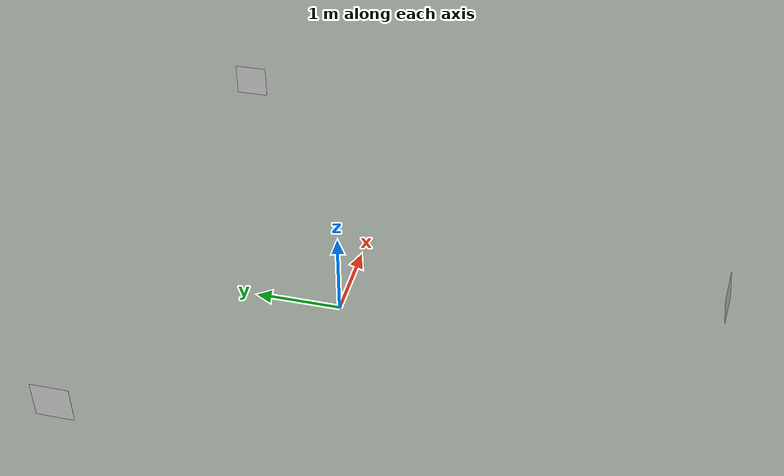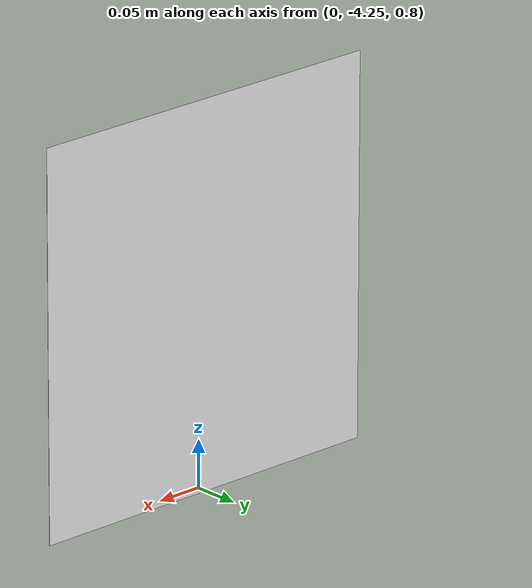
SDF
<?xml version="1.0" ?>
<sdf version="1.7">
<model name="aruco_default">
    <!-- ARUCO 0 -->
    <model name="aruco_0">
      <static>true</static>
      <pose>-2.99 2.0 1.0 1.5708 0 0</pose>
      <link name="link">
        <visual name="visual">
          <geometry>
            <plane><normal>1 0 0</normal><size>0.4 0.4</size></plane>
          </geometry>
          <material>
            <diffuse>1 1 1 1</diffuse>
              <pbr>
                <metal>
                <albedo_map>package://jackal_helper/materials/4x4_1000-0.png</albedo_map>
                </metal>
              </pbr>
          </material>
        </visual>
      </link>
    </model>

    <!-- ARUCO 1 -->
    <model name="aruco_1">
      <static>true</static>
      <pose>2.99 2.0 1.0 1.5708 0 0</pose>
      <link name="link">
        <visual name="visual">
          <geometry>
            <plane><normal>-1 0 0</normal><size>0.4 0.4</size></plane>
          </geometry>
          <material>
            <diffuse>1 1 1 1</diffuse>
              <pbr>
                <metal>
                <albedo_map>package://jackal_helper/materials/4x4_1000-1.png</albedo_map>
                </metal>
              </pbr>
          </material>
        </visual>
      </link>
    </model>

    <!-- ARUCO 2 -->
    <model name="aruco_2">
      <static>true</static>
      <pose>0 -4.24 1.0 0 -3.1415 0</pose>
      <link name="link">
        <visual name="visual">
          <geometry>
            <plane><normal>0 1 0</normal><size>0.4 0.4</size></plane>
          </geometry>
          <material>
            <diffuse>1 1 1 1</diffuse>
              <pbr>
                <metal>
                <albedo_map>package://jackal_helper/materials/4x4_1000-2.png</albedo_map>
                </metal>
              </pbr>
          </material>
        </visual>
      </link>
    </model>
</model>
</sdf>
